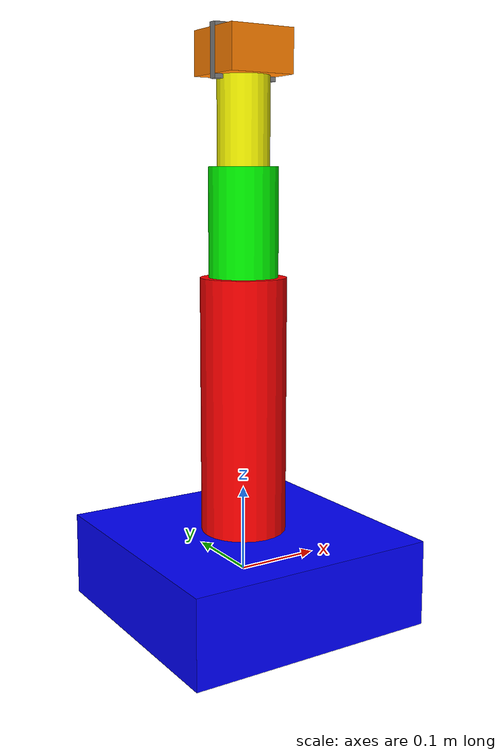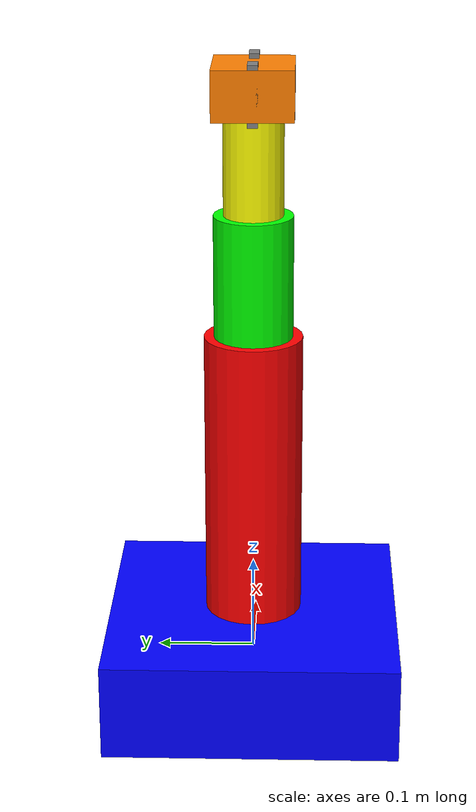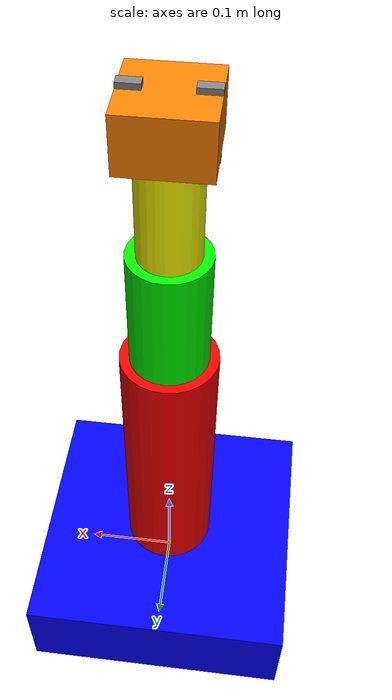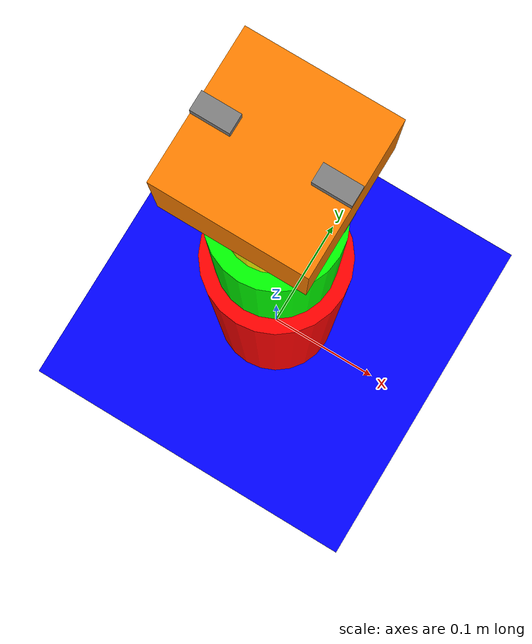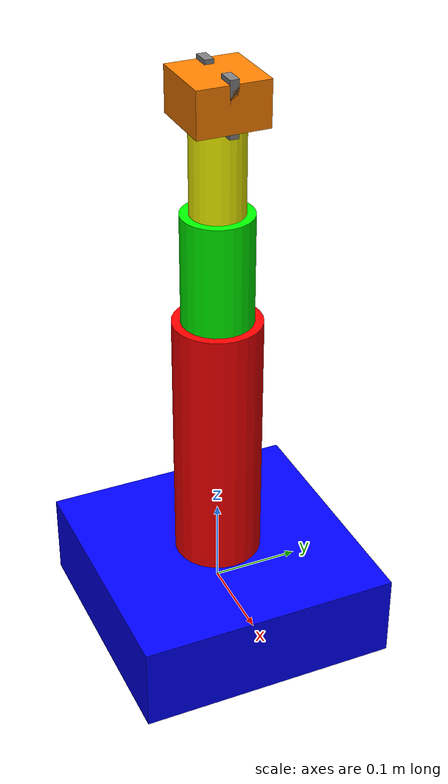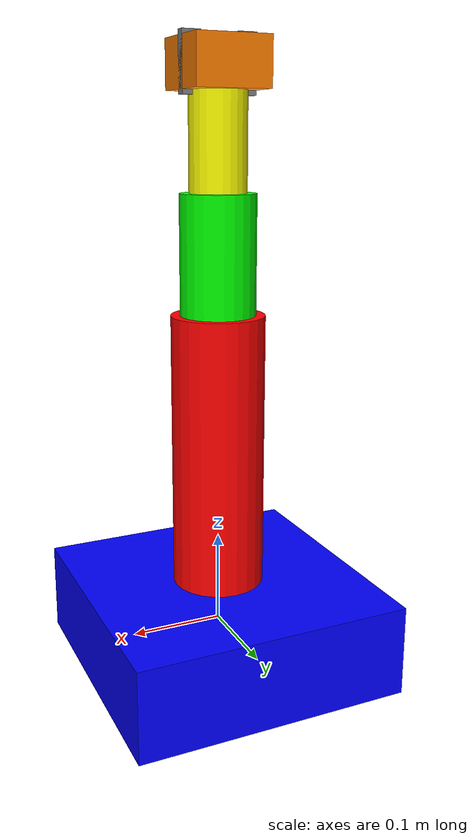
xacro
<?xml version="1.0"?>
<robot xmlns:xacro="http://www.ros.org/wiki/xacro" name="pick_place_robot">

  <!-- Constants -->
  <xacro:property name="PI" value="3.1415926535897931"/>

  <!-- Base Link -->
  <link name="base_link">
    <visual>
      <geometry>
        <box size="0.3 0.3 0.1"/>
      </geometry>
      <material name="blue">
        <color rgba="0 0 1 1"/>
      </material>
    </visual>
    <collision>
      <geometry>
        <box size="0.3 0.3 0.1"/>
      </geometry>
    </collision>
    <inertial>
      <mass value="10"/>
      <inertia ixx="0.1" ixy="0" ixz="0" iyy="0.1" iyz="0" izz="0.1"/>
    </inertial>
  </link>

  <!-- Link 1 -->
  <link name="link1">
    <visual>
      <geometry>
        <cylinder radius="0.05" length="0.3"/>
      </geometry>
      <material name="red">
        <color rgba="1 0 0 1"/>
      </material>
    </visual>
    <collision>
      <geometry>
        <cylinder radius="0.05" length="0.3"/>
      </geometry>
    </collision>
    <inertial>
      <mass value="2"/>
      <inertia ixx="0.02" ixy="0" ixz="0" iyy="0.02" iyz="0" izz="0.005"/>
    </inertial>
  </link>

  <!-- Joint 1 -->
  <joint name="joint1" type="revolute">
    <parent link="base_link"/>
    <child link="link1"/>
    <origin xyz="0 0 0.2" rpy="0 0 0"/>
    <axis xyz="0 0 1"/>
    <limit lower="-${PI}" upper="${PI}" effort="100" velocity="1"/>
  </joint>

  <!-- Link 2 -->
  <link name="link2">
    <visual>
      <geometry>
        <cylinder radius="0.04" length="0.25"/>
      </geometry>
      <material name="green">
        <color rgba="0 1 0 1"/>
      </material>
    </visual>
    <collision>
      <geometry>
        <cylinder radius="0.04" length="0.25"/>
      </geometry>
    </collision>
    <inertial>
      <mass value="1.5"/>
      <inertia ixx="0.015" ixy="0" ixz="0" iyy="0.015" iyz="0" izz="0.003"/>
    </inertial>
  </link>

  <!-- Joint 2 -->
  <joint name="joint2" type="revolute">
    <parent link="link1"/>
    <child link="link2"/>
    <origin xyz="0 0 0.15" rpy="0 0 0"/>
    <axis xyz="0 1 0"/>
    <limit lower="-${PI/2}" upper="${PI/2}" effort="50" velocity="1"/>
  </joint>

  <!-- Link 3 -->
  <link name="link3">
    <visual>
      <geometry>
        <cylinder radius="0.03" length="0.2"/>
      </geometry>
      <material name="yellow">
        <color rgba="1 1 0 1"/>
      </material>
    </visual>
    <collision>
      <geometry>
        <cylinder radius="0.03" length="0.2"/>
      </geometry>
    </collision>
    <inertial>
      <mass value="1"/>
      <inertia ixx="0.01" ixy="0" ixz="0" iyy="0.01" iyz="0" izz="0.002"/>
    </inertial>
  </link>

  <!-- Joint 3 -->
  <joint name="joint3" type="revolute">
    <parent link="link2"/>
    <child link="link3"/>
    <origin xyz="0 0 0.125" rpy="0 0 0"/>
    <axis xyz="0 1 0"/>
    <limit lower="-${PI/2}" upper="${PI/2}" effort="30" velocity="1"/>
  </joint>

  <!-- End Effector -->
  <link name="end_effector">
    <visual>
      <geometry>
        <box size="0.08 0.08 0.05"/>
      </geometry>
      <material name="orange">
        <color rgba="1 0.5 0 1"/>
      </material>
    </visual>
    <collision>
      <geometry>
        <box size="0.08 0.08 0.05"/>
      </geometry>
    </collision>
    <inertial>
      <mass value="0.5"/>
      <inertia ixx="0.001" ixy="0" ixz="0" iyy="0.001" iyz="0" izz="0.001"/>
    </inertial>
  </link>

  <!-- End Effector Joint -->
  <joint name="end_effector_joint" type="fixed">
    <parent link="link3"/>
    <child link="end_effector"/>
    <origin xyz="0 0 0.125" rpy="0 0 0"/>
  </joint>

  <!-- Gripper Left -->
  <link name="gripper_left">
    <visual>
      <geometry>
        <box size="0.02 0.01 0.06"/>
      </geometry>
      <material name="gray">
        <color rgba="0.5 0.5 0.5 1"/>
      </material>
    </visual>
    <collision>
      <geometry>
        <box size="0.02 0.01 0.06"/>
      </geometry>
    </collision>
    <inertial>
      <mass value="0.1"/>
      <inertia ixx="0.0001" ixy="0" ixz="0" iyy="0.0001" iyz="0" izz="0.0001"/>
    </inertial>
  </link>

  <!-- Gripper Right -->
  <link name="gripper_right">
    <visual>
      <geometry>
        <box size="0.02 0.01 0.06"/>
      </geometry>
      <material name="gray">
        <color rgba="0.5 0.5 0.5 1"/>
      </material>
    </visual>
    <collision>
      <geometry>
        <box size="0.02 0.01 0.06"/>
      </geometry>
    </collision>
    <inertial>
      <mass value="0.1"/>
      <inertia ixx="0.0001" ixy="0" ixz="0" iyy="0.0001" iyz="0" izz="0.0001"/>
    </inertial>
  </link>

  <!-- Gripper Joints -->
  <joint name="gripper_left_joint" type="prismatic">
    <parent link="end_effector"/>
    <child link="gripper_left"/>
    <origin xyz="0.03 0 0" rpy="0 0 0"/>
    <axis xyz="1 0 0"/>
    <limit lower="0" upper="0.04" effort="10" velocity="0.1"/>
  </joint>

  <joint name="gripper_right_joint" type="prismatic">
    <parent link="end_effector"/>
    <child link="gripper_right"/>
    <origin xyz="-0.03 0 0" rpy="0 0 0"/>
    <axis xyz="-1 0 0"/>
    <limit lower="0" upper="0.04" effort="10" velocity="0.1"/>
  </joint>

  <!-- ros2_control -->
  <ros2_control name="pick_place_robot_system" type="system">
    <hardware>
      <plugin>gazebo_ros2_control/GazeboSystem</plugin>
    </hardware>
    <joint name="joint1">
      <command_interface name="position"/>
      <state_interface name="position"/>
      <state_interface name="velocity"/>
    </joint>
    <joint name="joint2">
      <command_interface name="position"/>
      <state_interface name="position"/>
      <state_interface name="velocity"/>
    </joint>
    <joint name="joint3">
      <command_interface name="position"/>
      <state_interface name="position"/>
      <state_interface name="velocity"/>
    </joint>
    <joint name="gripper_left_joint">
      <command_interface name="position"/>
      <state_interface name="position"/>
      <state_interface name="velocity"/>
    </joint>
    <joint name="gripper_right_joint">
      <command_interface name="position"/>
      <state_interface name="position"/>
      <state_interface name="velocity"/>
    </joint>
  </ros2_control>

  <!-- Gazebo ros2_control plugin -->
  <gazebo>
    <plugin filename="libgazebo_ros2_control.so" name="gazebo_ros2_control">
      <parameters>$(find pick_place_robot)/config/controllers.yaml</parameters>
    </plugin>
  </gazebo>

</robot>
